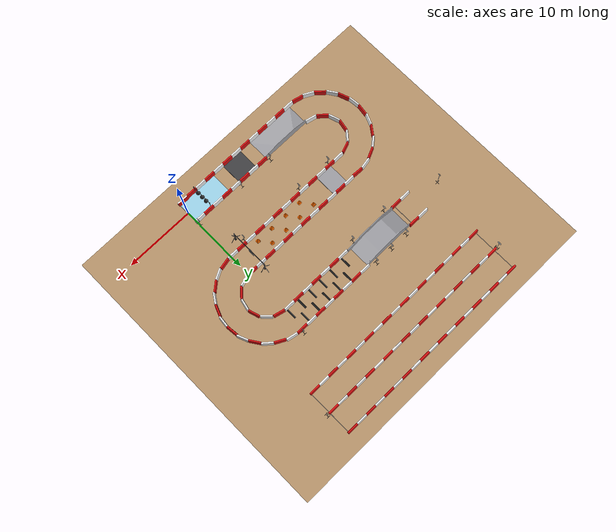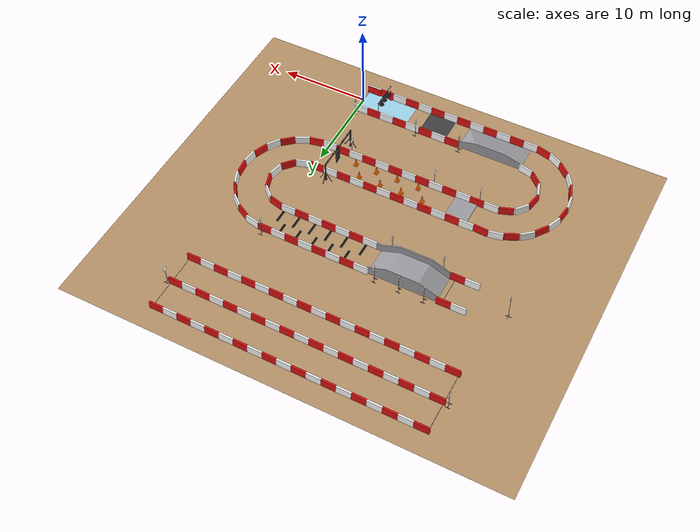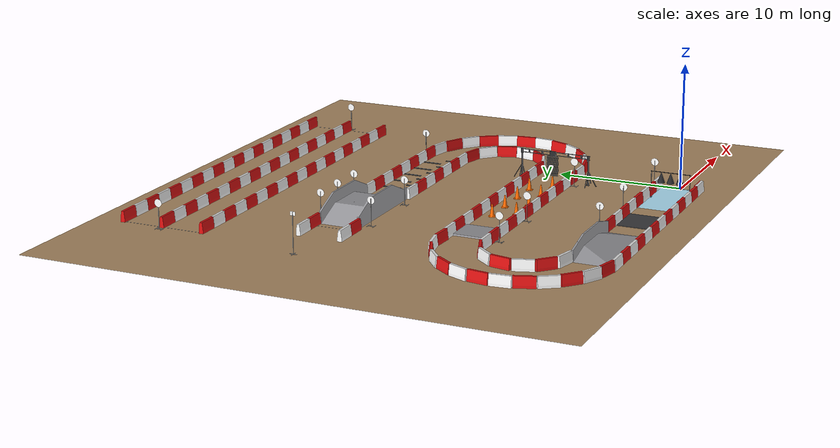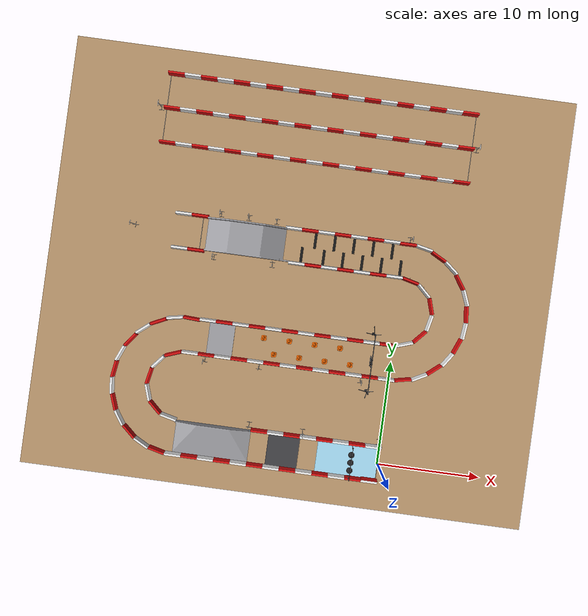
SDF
<?xml version="1.0" ?>
<sdf version="1.9">
  <world name="teknofest_2026">
    <!-- Fizik Ayarları -->
    <physics name="1ms" type="ignored">
      <max_step_size>0.001</max_step_size>
      <real_time_factor>1.0</real_time_factor>
    </physics>

    <!-- Temel Eklentiler -->
    <plugin filename="gz-sim-physics-system" name="gz::sim::systems::Physics"/>
    <plugin filename="gz-sim-user-commands-system" name="gz::sim::systems::UserCommands"/>
    <plugin filename="gz-sim-scene-broadcaster-system" name="gz::sim::systems::SceneBroadcaster"/>
    <plugin filename="gz-sim-sensors-system" name="gz::sim::systems::Sensors">
      <render_engine>ogre2</render_engine>
    </plugin>
    <!-- IMU ve GPS sensörleri bu sistemler olmadan veri üretmez -->
    <plugin filename="gz-sim-imu-system" name="gz::sim::systems::Imu"/>
    <plugin filename="gz-sim-navsat-system" name="gz::sim::systems::NavSat"/>

    <!-- GPS referansı: dünya orijini bu koordinata denk gelir (AGÜ, Kayseri) -->
    <spherical_coordinates>
      <surface_model>EARTH_WGS84</surface_model>
      <world_frame_orientation>ENU</world_frame_orientation>
      <latitude_deg>38.7370</latitude_deg>
      <longitude_deg>35.4730</longitude_deg>
      <elevation>1050</elevation>
      <heading_deg>0</heading_deg>
    </spherical_coordinates>

    <scene>
      <ambient>0.6 0.6 0.6 1</ambient>
      <background>0.7 0.8 0.95 1</background>
      <shadows>true</shadows>
    </scene>

    <!-- Güneş / Işık -->
    <light type="directional" name="sun">
      <cast_shadows>true</cast_shadows>
      <pose>0 0 30 0 0 0</pose>
      <diffuse>0.85 0.85 0.85 1</diffuse>
      <specular>0.2 0.2 0.2 1</specular>
      <direction>-0.4 0.3 -0.9</direction>
    </light>

    <!-- Güvenlik zemini: parkur plakasının (49 x 42 m) dışına çıkan araç düşmesin.
         Görünmez ve plakanın 2 cm altında; parkurun kendi zemini üstte kalır. -->
    <model name="safety_ground">
      <static>true</static>
      <pose>0 0 -0.02 0 0 0</pose>
      <link name="link">
        <collision name="collision">
          <geometry><plane><normal>0 0 1</normal><size>200 200</size></plane></geometry>
        </collision>
      </link>
    </model>

    <!-- TEKNOFEST parkuru -->
    <include>
      <uri>model://teknofest_ika_parkur</uri>
      <name>teknofest_ika_parkur</name>
      <pose>0 0 0 0 0 0</pose>
    </include>

  </world>
</sdf>

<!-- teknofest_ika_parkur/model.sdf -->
<!-- tools/parkur_to_gazebo.py ile uretildi; elle degistirmeyin, araci yeniden calistirin. -->
<sdf version="1.9">
  <model name="teknofest_ika_parkur">
    <static>true</static>
    <link name="parkur">
      <visual name="ground">
        <geometry><mesh><uri>model://teknofest_ika_parkur/meshes/ground.stl</uri></mesh></geometry>
        <material><ambient>0.72 0.58 0.42 1</ambient><diffuse>0.72 0.58 0.42 1</diffuse><specular>0.1 0.1 0.1 1</specular></material>
      </visual>
      <visual name="barrier_red">
        <geometry><mesh><uri>model://teknofest_ika_parkur/meshes/barrier_red.stl</uri></mesh></geometry>
        <material><ambient>0.85 0.06 0.06 1</ambient><diffuse>0.85 0.06 0.06 1</diffuse><specular>0.1 0.1 0.1 1</specular></material>
      </visual>
      <visual name="barrier_white">
        <geometry><mesh><uri>model://teknofest_ika_parkur/meshes/barrier_white.stl</uri></mesh></geometry>
        <material><ambient>0.95 0.95 0.95 1</ambient><diffuse>0.95 0.95 0.95 1</diffuse><specular>0.1 0.1 0.1 1</specular></material>
      </visual>
      <visual name="ramps">
        <geometry><mesh><uri>model://teknofest_ika_parkur/meshes/ramps.stl</uri></mesh></geometry>
        <material><ambient>0.62 0.62 0.64 1</ambient><diffuse>0.62 0.62 0.64 1</diffuse><specular>0.1 0.1 0.1 1</specular></material>
      </visual>
      <visual name="gravel">
        <geometry><mesh><uri>model://teknofest_ika_parkur/meshes/gravel.stl</uri></mesh></geometry>
        <material><ambient>0.25 0.25 0.26 1</ambient><diffuse>0.25 0.25 0.26 1</diffuse><specular>0.1 0.1 0.1 1</specular></material>
      </visual>
      <visual name="water">
        <geometry><mesh><uri>model://teknofest_ika_parkur/meshes/water.stl</uri></mesh></geometry>
        <material><ambient>0.35 0.75 0.9 1</ambient><diffuse>0.35 0.75 0.9 1</diffuse><specular>0.1 0.1 0.1 1</specular></material><transparency>0.45</transparency>
      </visual>
      <visual name="cones">
        <geometry><mesh><uri>model://teknofest_ika_parkur/meshes/cones.stl</uri></mesh></geometry>
        <material><ambient>1.0 0.42 0.0 1</ambient><diffuse>1.0 0.42 0.0 1</diffuse><specular>0.1 0.1 0.1 1</specular></material>
      </visual>
      <visual name="sign_plates">
        <geometry><mesh><uri>model://teknofest_ika_parkur/meshes/sign_plates.stl</uri></mesh></geometry>
        <material><ambient>0.96 0.96 0.96 1</ambient><diffuse>0.96 0.96 0.96 1</diffuse><specular>0.1 0.1 0.1 1</specular></material>
      </visual>
      <visual name="sign_posts">
        <geometry><mesh><uri>model://teknofest_ika_parkur/meshes/sign_posts.stl</uri></mesh></geometry>
        <material><ambient>0.08 0.08 0.08 1</ambient><diffuse>0.08 0.08 0.08 1</diffuse><specular>0.1 0.1 0.1 1</specular></material>
      </visual>
      <visual name="bumps">
        <geometry><mesh><uri>model://teknofest_ika_parkur/meshes/bumps.stl</uri></mesh></geometry>
        <material><ambient>0.1 0.1 0.1 1</ambient><diffuse>0.1 0.1 0.1 1</diffuse><specular>0.1 0.1 0.1 1</specular></material>
      </visual>
      <visual name="lines">
        <geometry><mesh><uri>model://teknofest_ika_parkur/meshes/lines.stl</uri></mesh></geometry>
        <material><ambient>0.05 0.05 0.05 1</ambient><diffuse>0.05 0.05 0.05 1</diffuse><specular>0.1 0.1 0.1 1</specular></material>
      </visual>
      <visual name="curtain">
        <geometry><mesh><uri>model://teknofest_ika_parkur/meshes/curtain.stl</uri></mesh></geometry>
        <material><ambient>0.05 0.05 0.05 1</ambient><diffuse>0.05 0.05 0.05 1</diffuse><specular>0.1 0.1 0.1 1</specular></material>
      </visual>
      <visual name="frames">
        <geometry><mesh><uri>model://teknofest_ika_parkur/meshes/frames.stl</uri></mesh></geometry>
        <material><ambient>0.15 0.15 0.16 1</ambient><diffuse>0.15 0.15 0.16 1</diffuse><specular>0.1 0.1 0.1 1</specular></material>
      </visual>
      <collision name="ground">
        <geometry><mesh><uri>model://teknofest_ika_parkur/meshes/ground.stl</uri></mesh></geometry>
      </collision>
      <collision name="barrier_red">
        <geometry><mesh><uri>model://teknofest_ika_parkur/meshes/barrier_red_collision.stl</uri></mesh></geometry>
      </collision>
      <collision name="barrier_white">
        <geometry><mesh><uri>model://teknofest_ika_parkur/meshes/barrier_white_collision.stl</uri></mesh></geometry>
      </collision>
      <collision name="ramps">
        <geometry><mesh><uri>model://teknofest_ika_parkur/meshes/ramps.stl</uri></mesh></geometry>
      </collision>
      <collision name="gravel">
        <geometry><mesh><uri>model://teknofest_ika_parkur/meshes/gravel.stl</uri></mesh></geometry>
      </collision>
      <collision name="water">
        <geometry><mesh><uri>model://teknofest_ika_parkur/meshes/water.stl</uri></mesh></geometry>
      </collision>
      <collision name="cones">
        <geometry><mesh><uri>model://teknofest_ika_parkur/meshes/cones_collision.stl</uri></mesh></geometry>
      </collision>
      <collision name="sign_posts">
        <geometry><mesh><uri>model://teknofest_ika_parkur/meshes/sign_posts_collision.stl</uri></mesh></geometry>
      </collision>
      <collision name="bumps">
        <geometry><mesh><uri>model://teknofest_ika_parkur/meshes/bumps_collision.stl</uri></mesh></geometry>
      </collision>
      <collision name="frames">
        <geometry><mesh><uri>model://teknofest_ika_parkur/meshes/frames_collision.stl</uri></mesh></geometry>
      </collision>
    </link>
  </model>
</sdf>
